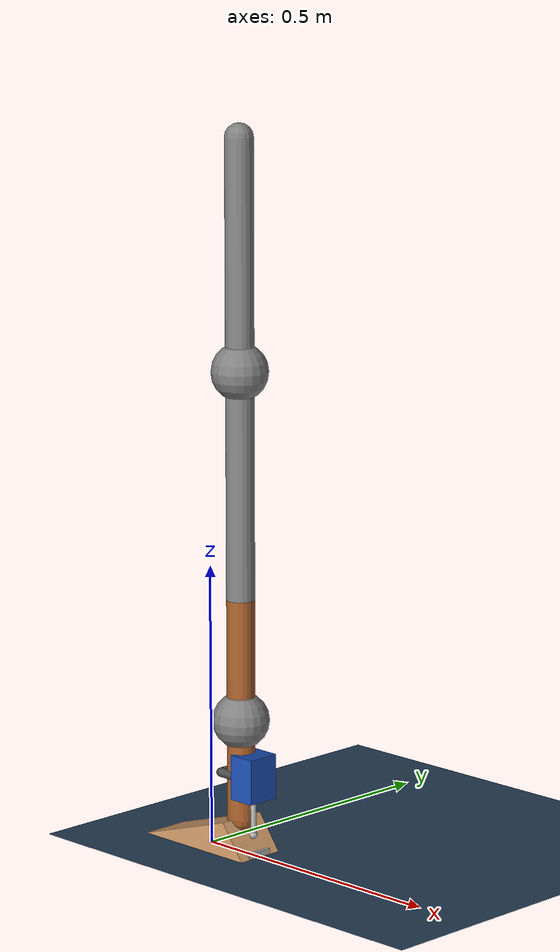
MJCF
<mujoco model="initial_humanoid">

  <option gravity="0 0 -9.81">
  </option>

  <visual>
    <map zfar="30" />

    <rgba haze="0.15 0.25 0.35 1" />

  </visual>

  <statistic center="0 0 0.7" />

  <asset>

    <texture type="skybox" builtin="gradient" rgb1=".3 .5 .7" rgb2="0 0 0" width="32" height="512" />

    <texture name="body" type="cube" builtin="flat" mark="cross" width="128" height="128" rgb1="0.8 0.6 0.4" rgb2="0.8 0.6 0.4" markrgb="1 1 1" random="0.01" />

    <material name="body" texture="body" texuniform="true" rgba="0.8 0.6 .4 1" />

    <texture name="grid" type="2d" builtin="checker" width="512" height="512" rgb1=".1 .2 .3" rgb2=".2 .3 .4" />

    <material name="grid" texture="grid" texrepeat="1 1" texuniform="true" reflectance=".2" />

    <mesh name="foot_mesh" vertex="-0.12084 -0.045 0   -0.12084 0.045 0   0.12084 -0.045 0   0.12084 0.045 0  -0.07492080000000001 -0.045 0.06201 -0.07492080000000001 0.045 0.06201" />

    <material name="exo_metal" rgba="0.7 0.7 0.7 1" shininess="0.8" specular="0.5" />
    <material name="exo_blue" rgba="0.1 0.3 0.7 1" shininess="0.3" specular="0.3" />
    <material name="exo_straps" rgba="0.3 0.3 0.3 1" shininess="0.1" specular="0.1" />

  </asset>

  <default>

    <default class="general_geom">
      <motor ctrlrange="-0.5 0.5" ctrllimited="true" />

      <geom material="body" type="capsule" condim="1" friction="0.99 0.99 0.99" solimp=".9 .99 .003" group="1" />

      <default class="long_link">
        <geom fromto="0 0 0.1 0 0 0" size="0.025" />
      </default>

    </default>
  </default>

	<worldbody>

      <geom name="ground" size="0 0 .05" friction="0.99 0.99 0.99" type="plane" material="grid" condim="3" solimp=".9 .99 .003" />

      <light name="spotlight" mode="targetbodycom" target="foot" diffuse=".8 .8 .8" specular="0.3 0.3 0.3" pos="0 -6 4" cutoff="30" />

        <body name="foot" pos="0. 0 0" quat="0 0 0 1">

          <joint type="hinge" name="rotation_dof" axis="0 1 0" pos="-0.07492080000000001 0 0.06201" />
          <joint type="slide" name="joint_slide_x" axis="1 0 0" pos="-0.07492080000000001 0 0.035" />
          <joint type="slide" name="joint_slide_z" axis="0 0 1" pos="-0.07492080000000001 0 0.035" />

          <site name="front_foot_site" type="cylinder" size="0.075" rgba="0.5 0.5 0.5 0" fromto="-0.12084 0 0.0 -0.12084 0 0.1" />
          <site name="back_foot_site" type="cylinder" size="0.075" rgba="0.5 0.5 0.5 0" fromto="0.12084 0 0.0 0.12084 0 0.1" />

          <geom type="mesh" mesh="foot_mesh" name="foot_geom" friction=".99 .99 .99" rgba="0.8 0.6 0.4 1" />

          <geom name="exo_heel_attachment" type="box" size="0.02 0.025 0.005" pos="-0.1 0 0.005" material="exo_metal" contype="0" conaffinity="0" />

            <body name="long_link_body" pos="-0.07492080000000001 0 0.06201">

              <joint type="hinge" name="ankle_hinge" axis="0 1 0" damping="2.5" pos="0 0 0" />
              <geom name="long_link_geom" class="long_link" solref="0.015 1" solimp=".99 .99 .001" mass="0" fromto="0 0 0.39114 0 0 0" />
              <geom name="m_body" type="sphere" size="0.05" mass="5.8260000000000005" pos="0 0 0.176013" />

              <geom name="exo_housing" type="box" size="0.025 0.03 0.04" pos="-0.03 0 0.08" material="exo_blue" contype="0" conaffinity="0" />

              <geom name="exo_connecting_rod" type="capsule" fromto="-0.03 0 0.05 -0.03 0 -0.025" size="0.005" material="exo_metal" contype="0" conaffinity="0" />

              <geom name="exo_joint_upper" type="sphere" size="0.007" pos="-0.03 0 0.05" material="exo_metal" contype="0" conaffinity="0" />

              <geom name="exo_joint_lower" type="sphere" size="0.007" pos="-0.03 0 -0.025" material="exo_metal" contype="0" conaffinity="0" />

              <geom name="exo_calf_strap_left" type="capsule" fromto="-0.03 -0.02 0.08 0.03 -0.02 0.08" size="0.008" material="exo_straps" contype="0" conaffinity="0" />

              <geom name="exo_calf_strap_right" type="capsule" fromto="-0.03 0.02 0.08 0.03 0.02 0.08" size="0.008" material="exo_straps" contype="0" conaffinity="0" />

              <geom name="exo_calf_strap_top" type="capsule" fromto="0.03 -0.02 0.08 0.03 0.02 0.08" size="0.008" material="exo_straps" contype="0" conaffinity="0" />

              <body name="upper_body" pos="0 0 0.39114">
                  <joint type="hinge" name="hip_hinge" axis="0 1 0" damping="2.5" pos="0 0 0" />
                  <geom name="upper_body_geom" type="capsule" fromto="0 0 0 0 0 0.795" size="0.025" solref="0.015 1" solimp=".99 .99 .001" />
                  <geom name="upper_body_com" type="sphere" size="0.05" pos="0 0 0.3975" mass="34.955999999999996" />
              </body>

            </body>

        </body>
	</worldbody>

  <contact>
    <pair name="foot_ground_friction" geom1="foot_geom" geom2="ground" solref="0.015 1" solimp="0.99 .99 .003" friction="0.99 0.99 0.99 0.99 0.99" />
    <pair name="longlink_ground_friction" geom1="long_link_geom" geom2="ground" solref="0.015 1" solimp="0.99 .99 .003" friction=".99 .99 .99" />
  </contact>

	<actuator>
      <motor joint="ankle_hinge" name="human_ankle_actuator" gear="1" ctrlrange="-150 150" ctrllimited="true" />
      <motor joint="ankle_hinge" name="exo_ankle_actuator" gear="1" ctrlrange="-50 50" ctrllimited="true" />
      <motor joint="hip_hinge" name="hip_actuator" gear="1" ctrlrange="-150 150" ctrllimited="true" />
	</actuator>

	<sensor>
      <jointpos joint="ankle_hinge" />
      <touch site="front_foot_site" />
      <touch site="back_foot_site" />
      <jointpos joint="hip_hinge" />
      <jointvel joint="hip_hinge" />
      <actuatorfrc actuator="hip_actuator" />
	</sensor>

</mujoco>
